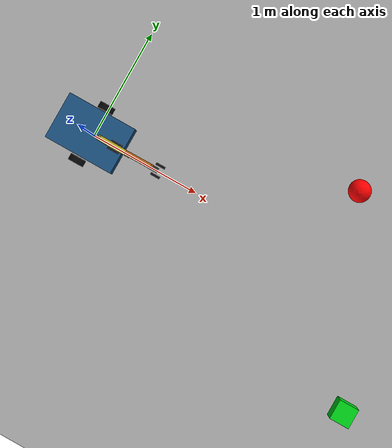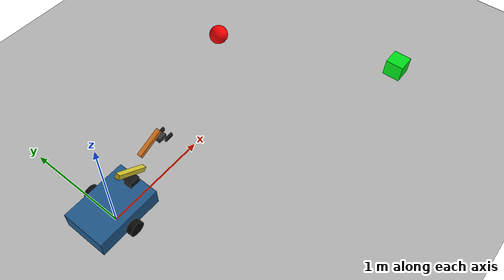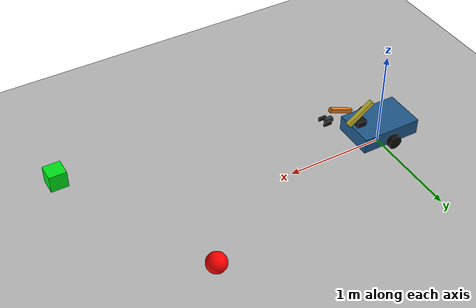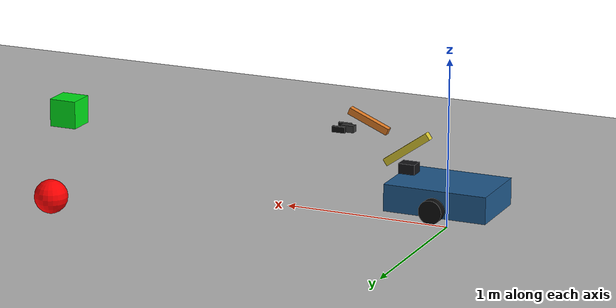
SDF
<sdf version="1.8">
 <world name="rover_world">
  <physics name="1ms" type="ignored">
   <max_step_size>0.001</max_step_size>
   <real_time_factor>1.0</real_time_factor>
  </physics>
  <plugin filename="gz-sim-physics-system" name="gz::sim::systems::Physics"/>
  <plugin filename="gz-sim-user-commands-system" name="gz::sim::systems::UserCommands"/>
  <plugin filename="gz-sim-scene-broadcaster-system" name="gz::sim::systems::SceneBroadcaster"/>
  <plugin filename="gz-sim-sensors-system" name="gz::sim::systems::Sensors">
   <render_engine>ogre2</render_engine>
  </plugin>
  <light name="sun" type="directional">
   <pose>0 0 10 0 0 0</pose>
   <diffuse>0.9 0.9 0.9 1</diffuse>
   <specular>0.3 0.3 0.3 1</specular>
   <direction>-0.4 0.2 -0.9</direction>
  </light>
  <model name="ground_plane">
   <static>true</static>
   <link name="link">
    <collision name="collision">
     <geometry><plane><normal>0 0 1</normal><size>20 20</size></plane></geometry>
    </collision>
    <visual name="visual">
     <geometry><plane><normal>0 0 1</normal><size>20 20</size></plane></geometry>
     <material><ambient>0.72 0.72 0.72 1</ambient><diffuse>0.72 0.72 0.72 1</diffuse></material>
    </visual>
   </link>
  </model>
  <include><uri>model://rover</uri><name>rover</name><pose>0 0 0.10 0 0 0</pose></include>
  <model name="red_ball">
   <pose>2.2 0.7 0.10 0 0 0</pose>
   <link name="link">
    <inertial><mass>0.12</mass><inertia><ixx>0.0005</ixx><iyy>0.0005</iyy><izz>0.0005</izz></inertia></inertial>
    <collision name="collision"><geometry><sphere><radius>0.10</radius></sphere></geometry></collision>
    <visual name="visual">
     <geometry><sphere><radius>0.10</radius></sphere></geometry>
     <material><ambient>1 0 0 1</ambient><diffuse>1 0 0 1</diffuse></material>
    </visual>
   </link>
  </model>
  <model name="green_cube">
   <pose>3.0 -1.0 0.09 0 0 0</pose>
   <link name="link">
    <inertial><mass>0.16</mass><inertia><ixx>0.0007</ixx><iyy>0.0007</iyy><izz>0.0007</izz></inertia></inertial>
    <collision name="collision"><geometry><box><size>0.18 0.18 0.18</size></box></geometry></collision>
    <visual name="visual">
     <geometry><box><size>0.18 0.18 0.18</size></box></geometry>
     <material><ambient>0 0.9 0.1 1</ambient><diffuse>0 0.9 0.1 1</diffuse></material>
    </visual>
   </link>
  </model>
 </world>
</sdf>

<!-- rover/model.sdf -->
<sdf version="1.8">
  <model name="rover">
    <pose>0 0 0.10 0 0 0</pose>

    <link name="base_link">
      <pose>0 0 0.10 0 0 0</pose>
      <inertial>
        <mass>10.0</mass>
        <inertia>
          <ixx>0.11</ixx>
          <ixy>0</ixy>
          <ixz>0</ixz>
          <iyy>0.16</iyy>
          <iyz>0</iyz>
          <izz>0.22</izz>
        </inertia>
      </inertial>
      <visual name="base_visual">
        <geometry><box><size>0.62 0.42 0.16</size></box></geometry>
        <material>
          <ambient>0.12 0.35 0.55 1</ambient>
          <diffuse>0.12 0.35 0.55 1</diffuse>
        </material>
      </visual>
      <collision name="base_collision">
        <geometry><box><size>0.62 0.42 0.16</size></box></geometry>
      </collision>
    </link>

    <link name="left_wheel">
      <pose>0 0.25 0.07 -1.5707 0 0</pose>
      <inertial><mass>0.7</mass><inertia><ixx>0.001</ixx><iyy>0.001</iyy><izz>0.001</izz></inertia></inertial>
      <visual name="visual">
        <geometry><cylinder><radius>0.07</radius><length>0.055</length></cylinder></geometry>
        <material><ambient>0.04 0.04 0.04 1</ambient><diffuse>0.04 0.04 0.04 1</diffuse></material>
      </visual>
      <collision name="collision"><geometry><cylinder><radius>0.07</radius><length>0.055</length></cylinder></geometry></collision>
    </link>

    <link name="right_wheel">
      <pose>0 -0.25 0.07 -1.5707 0 0</pose>
      <inertial><mass>0.7</mass><inertia><ixx>0.001</ixx><iyy>0.001</iyy><izz>0.001</izz></inertia></inertial>
      <visual name="visual">
        <geometry><cylinder><radius>0.07</radius><length>0.055</length></cylinder></geometry>
        <material><ambient>0.04 0.04 0.04 1</ambient><diffuse>0.04 0.04 0.04 1</diffuse></material>
      </visual>
      <collision name="collision"><geometry><cylinder><radius>0.07</radius><length>0.055</length></cylinder></geometry></collision>
    </link>

    <link name="rear_caster">
      <pose>-0.24 0 0.045 0 0 0</pose>
      <inertial><mass>0.2</mass><inertia><ixx>0.0001</ixx><iyy>0.0001</iyy><izz>0.0001</izz></inertia></inertial>
      <visual name="visual">
        <geometry><sphere><radius>0.045</radius></sphere></geometry>
        <material><ambient>0.35 0.35 0.35 1</ambient><diffuse>0.35 0.35 0.35 1</diffuse></material>
      </visual>
      <collision name="collision"><geometry><sphere><radius>0.045</radius></sphere></geometry></collision>
    </link>

    <link name="camera_link">
      <pose>0.24 0 0.23 0 0 0</pose>
      <inertial><mass>0.1</mass><inertia><ixx>0.0001</ixx><iyy>0.0001</iyy><izz>0.0001</izz></inertia></inertial>
      <visual name="visual">
        <geometry><box><size>0.10 0.08 0.06</size></box></geometry>
        <material><ambient>0.08 0.08 0.09 1</ambient><diffuse>0.08 0.08 0.09 1</diffuse></material>
      </visual>
      <collision name="collision"><geometry><box><size>0.10 0.08 0.06</size></box></geometry></collision>
      <sensor name="camera" type="camera">
        <topic>camera</topic>
        <update_rate>15</update_rate>
        <camera>
          <horizontal_fov>1.396</horizontal_fov>
          <image><width>640</width><height>480</height><format>R8G8B8</format></image>
          <clip><near>0.05</near><far>10</far></clip>
        </camera>
      </sensor>
    </link>

    <link name="arm_link_1">
      <pose>0.25 0 0.34 0 0.62 0</pose>
      <inertial><mass>0.5</mass><inertia><ixx>0.002</ixx><iyy>0.002</iyy><izz>0.001</izz></inertia></inertial>
      <visual name="visual">
        <geometry><box><size>0.32 0.045 0.045</size></box></geometry>
        <material><ambient>0.85 0.78 0.18 1</ambient><diffuse>0.85 0.78 0.18 1</diffuse></material>
      </visual>
      <collision name="collision"><geometry><box><size>0.32 0.045 0.045</size></box></geometry></collision>
    </link>

    <link name="arm_link_2">
      <pose>0.49 0 0.48 0 -0.40 0</pose>
      <inertial><mass>0.35</mass><inertia><ixx>0.001</ixx><iyy>0.001</iyy><izz>0.001</izz></inertia></inertial>
      <visual name="visual">
        <geometry><box><size>0.26 0.04 0.04</size></box></geometry>
        <material><ambient>0.88 0.48 0.14 1</ambient><diffuse>0.88 0.48 0.14 1</diffuse></material>
      </visual>
      <collision name="collision"><geometry><box><size>0.26 0.04 0.04</size></box></geometry></collision>
    </link>

    <link name="gripper">
      <pose>0.62 0 0.42 0 0 0</pose>
      <inertial><mass>0.15</mass><inertia><ixx>0.0002</ixx><iyy>0.0002</iyy><izz>0.0002</izz></inertia></inertial>
      <visual name="palm">
        <geometry><box><size>0.08 0.04 0.04</size></box></geometry>
        <material><ambient>0.22 0.22 0.22 1</ambient><diffuse>0.22 0.22 0.22 1</diffuse></material>
      </visual>
      <visual name="left_finger">
        <pose>0.04 0.045 0 0 0 0</pose>
        <geometry><box><size>0.08 0.018 0.035</size></box></geometry>
        <material><ambient>0.05 0.05 0.05 1</ambient><diffuse>0.05 0.05 0.05 1</diffuse></material>
      </visual>
      <visual name="right_finger">
        <pose>0.04 -0.045 0 0 0 0</pose>
        <geometry><box><size>0.08 0.018 0.035</size></box></geometry>
        <material><ambient>0.05 0.05 0.05 1</ambient><diffuse>0.05 0.05 0.05 1</diffuse></material>
      </visual>
      <collision name="collision"><geometry><box><size>0.12 0.12 0.05</size></box></geometry></collision>
    </link>

    <joint name="left_wheel_joint" type="revolute">
      <parent>base_link</parent>
      <child>left_wheel</child>
      <axis><xyz>0 0 1</xyz><limit><lower>-1e308</lower><upper>1e308</upper></limit></axis>
    </joint>

    <joint name="right_wheel_joint" type="revolute">
      <parent>base_link</parent>
      <child>right_wheel</child>
      <axis><xyz>0 0 1</xyz><limit><lower>-1e308</lower><upper>1e308</upper></limit></axis>
    </joint>

    <joint name="rear_caster_joint" type="ball">
      <parent>base_link</parent>
      <child>rear_caster</child>
    </joint>

    <joint name="camera_joint" type="fixed">
      <parent>base_link</parent>
      <child>camera_link</child>
    </joint>

    <joint name="joint1" type="revolute">
      <pose>0.18 0 0.20 0 0 0</pose>
      <parent>base_link</parent>
      <child>arm_link_1</child>
      <axis>
        <xyz>0 1 0</xyz>
        <limit><lower>-1.2</lower><upper>1.4</upper><effort>8</effort><velocity>1.5</velocity></limit>
      </axis>
    </joint>

    <joint name="joint2" type="revolute">
      <pose>0.39 0 0.43 0 0 0</pose>
      <parent>arm_link_1</parent>
      <child>arm_link_2</child>
      <axis>
        <xyz>0 1 0</xyz>
        <limit><lower>-1.9</lower><upper>0.4</upper><effort>6</effort><velocity>1.5</velocity></limit>
      </axis>
    </joint>

    <joint name="gripper_joint" type="revolute">
      <pose>0.60 0 0.43 0 0 0</pose>
      <parent>arm_link_2</parent>
      <child>gripper</child>
      <axis>
        <xyz>0 1 0</xyz>
        <limit><lower>-0.6</lower><upper>1.1</upper><effort>2</effort><velocity>2.0</velocity></limit>
      </axis>
    </joint>

    <plugin filename="gz-sim-diff-drive-system" name="gz::sim::systems::DiffDrive">
      <left_joint>left_wheel_joint</left_joint>
      <right_joint>right_wheel_joint</right_joint>
      <wheel_separation>0.50</wheel_separation>
      <wheel_radius>0.07</wheel_radius>
      <topic>cmd_vel</topic>
      <odom_topic>odometry</odom_topic>
      <frame_id>odom</frame_id>
      <child_frame_id>base_link</child_frame_id>
      <odom_publish_frequency>30</odom_publish_frequency>
      <max_linear_velocity>0.7</max_linear_velocity>
      <max_angular_velocity>1.4</max_angular_velocity>
    </plugin>

    <plugin filename="gz-sim-joint-position-controller-system" name="gz::sim::systems::JointPositionController">
      <joint_name>joint1</joint_name>
      <topic>/rover/joint1_position</topic>
      <p_gain>6.0</p_gain>
    </plugin>
    <plugin filename="gz-sim-joint-position-controller-system" name="gz::sim::systems::JointPositionController">
      <joint_name>joint2</joint_name>
      <topic>/rover/joint2_position</topic>
      <p_gain>6.0</p_gain>
    </plugin>
    <plugin filename="gz-sim-joint-position-controller-system" name="gz::sim::systems::JointPositionController">
      <joint_name>gripper_joint</joint_name>
      <topic>/rover/gripper_position</topic>
      <p_gain>4.0</p_gain>
    </plugin>
  </model>
</sdf>
